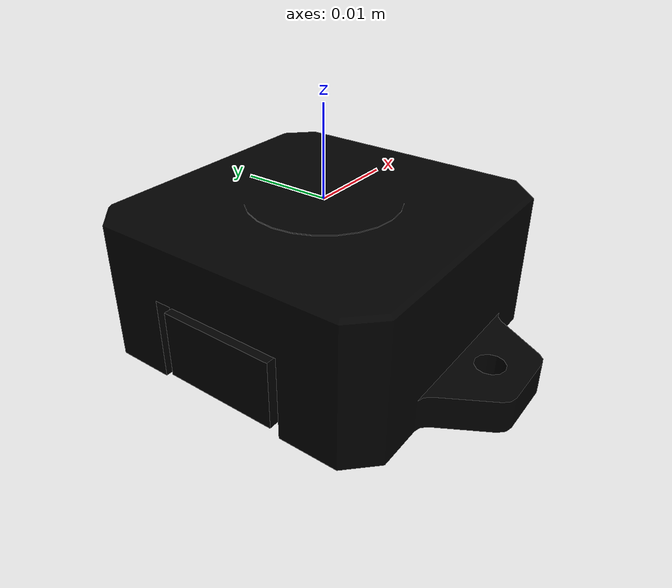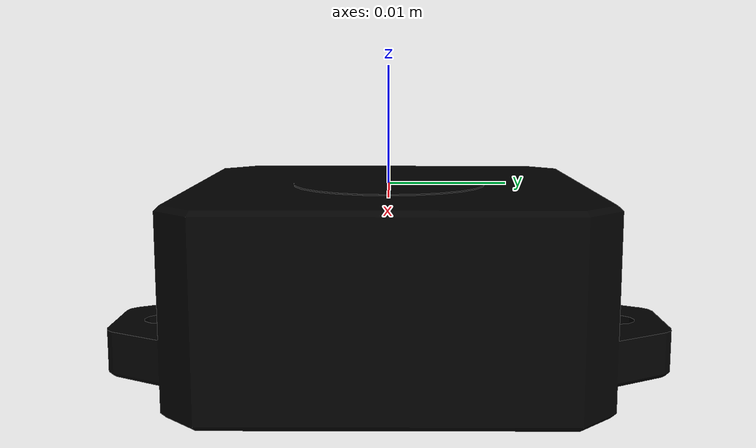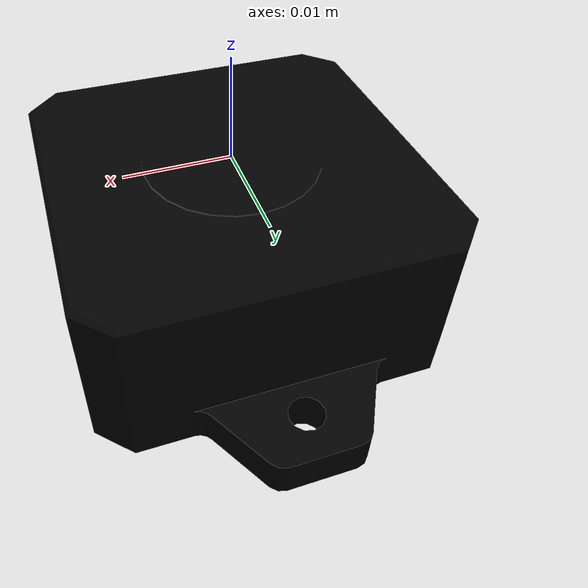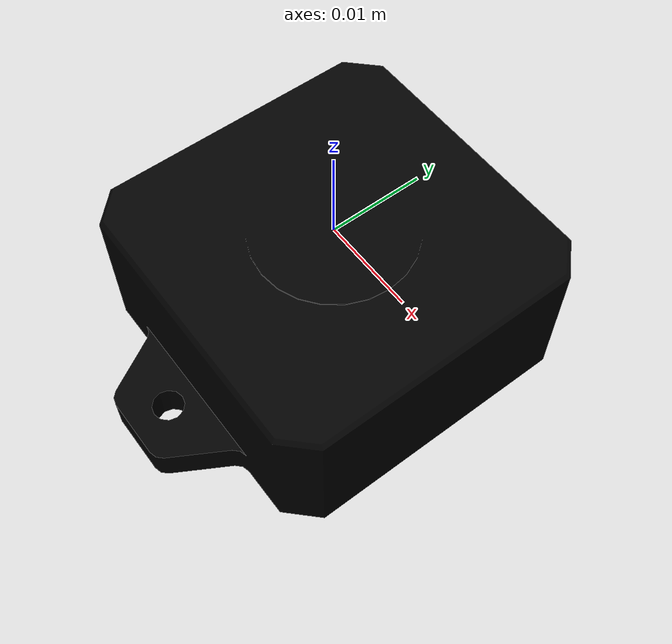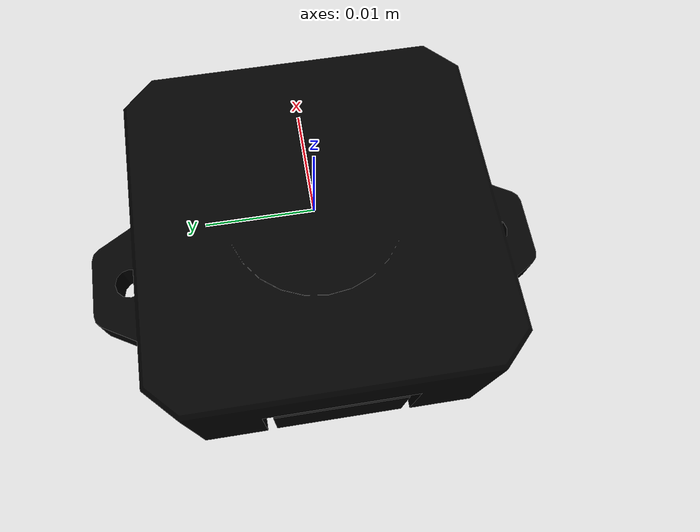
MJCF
<mujoco model="imu">
  <default>
    <default class="visual">
      <geom group="2" type="mesh" contype="0" conaffinity="0"/>
    </default>
    <default class="collision">
      <geom group="3" type="mesh"/>
    </default>
  </default>
  <asset>
    <material name="material_0" specular="0.4000000000000001" shininess="0.001" rgba="0.00000000 0.00000000 0.00000000 1.0"/>
    <mesh file="imu.obj"/>
  </asset>
  <worldbody>
    <body name="imu">
      <geom material="material_0" mesh="imu" class="visual"/>
    </body>
  </worldbody>
</mujoco>
